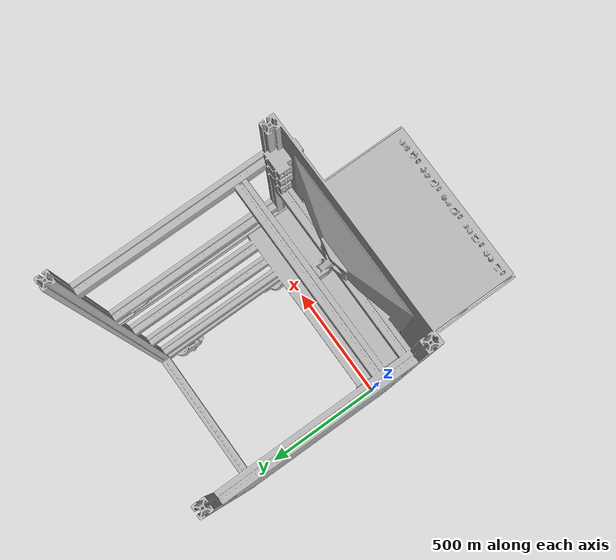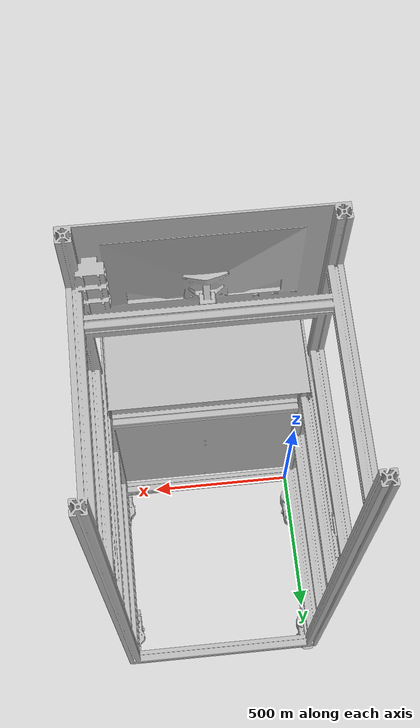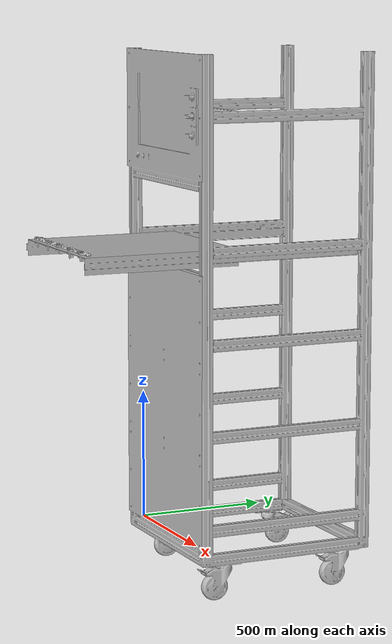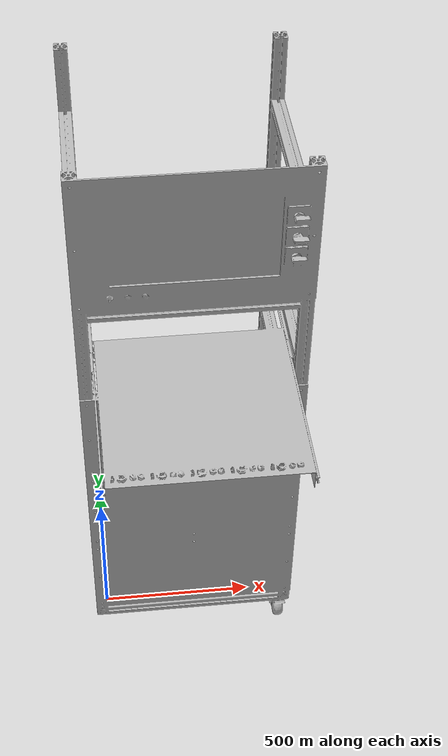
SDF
<?xml version='1.0'?>
<sdf version='1.4'>
  <model name="interface">
    <static>true</static>
      <link name='chassis'>
        <pose>0 0 0 0 0 0</pose>

        <collision name='collision'>
          <geometry>
            <box>
              <size>.5 .5 2</size>
            </box>
          </geometry>
        </collision>

        <visual name='visual'>
          <geometry>
            <mesh>
              <uri>/catkin_ws/src/experimentdevel/world/interface/meshes/interface_dec.dae</uri>
            </mesh>
          </geometry>
        </visual>
      </link>
  </model>
</sdf>
